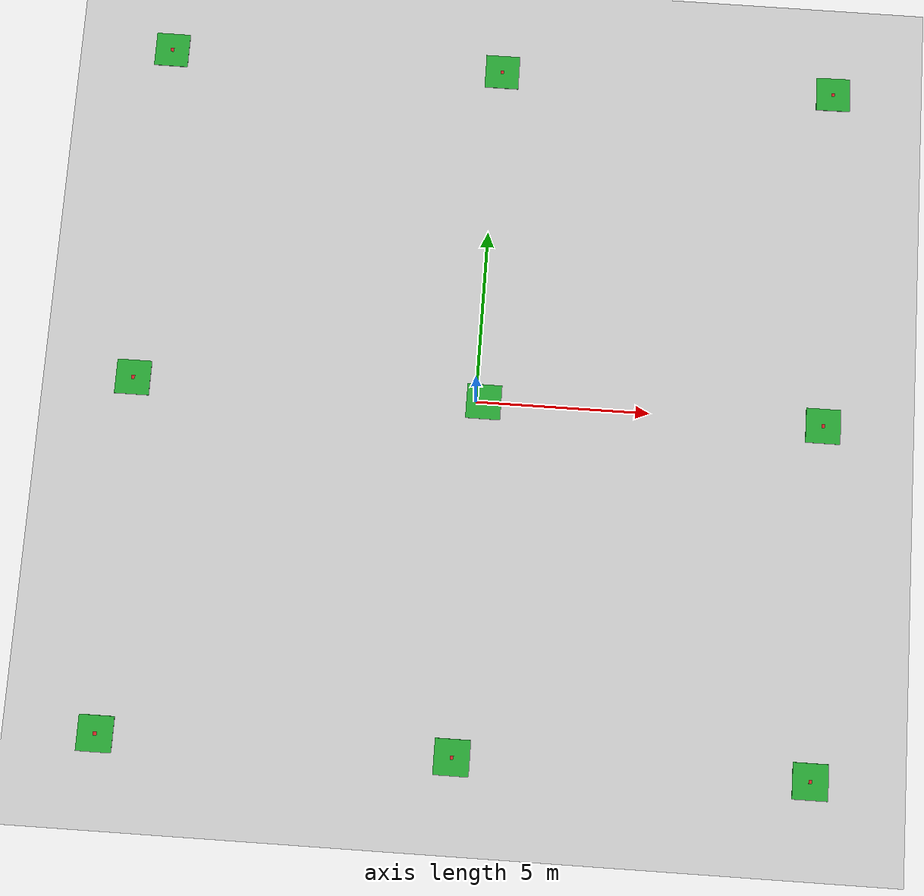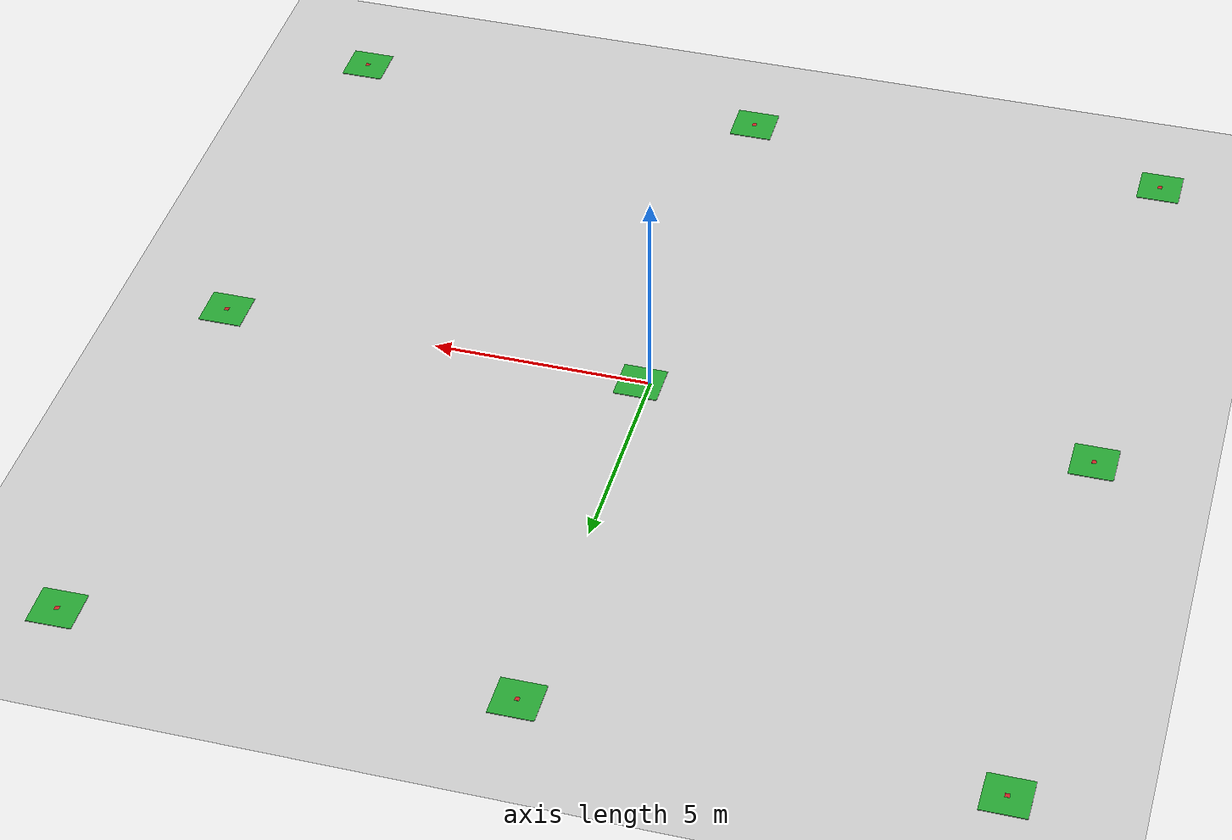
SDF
<sdf version="1.7">
 <world name="default">
  <physics type="ode">
   <ode>
    <solver>
     <type>quick</type>
     <iters>100</iters>
     <sor>1</sor>
     <use_dynamic_moi_rescaling>0</use_dynamic_moi_rescaling>
    </solver>
    <constraints>
     <cfm>0</cfm>
     <erp>0.9</erp>
     <contact_max_correcting_vel>0.1</contact_max_correcting_vel>
     <contact_surface_layer>0</contact_surface_layer>
    </constraints>
   </ode>
   <real_time_update_rate>-1</real_time_update_rate>
   <max_step_size>0.001</max_step_size>
   <real_time_factor>1</real_time_factor>
  </physics>
  <light name="sun" type="directional">
   <pose>0 0 10 0 -0 0</pose>
   <diffuse>0.8 0.8 0.8 1</diffuse>
   <specular>0.2 0.2 0.2 1</specular>
   <attenuation>
    <range>1000</range>
    <constant>0.9</constant>
    <linear>0.01</linear>
    <quadratic>0.001</quadratic>
   </attenuation>
   <direction>-0.5 0.1 -0.9</direction>
   <spot><inner_angle>0</inner_angle><outer_angle>0</outer_angle><falloff>0</falloff></spot>
  </light>
  <model name="ground_plane">
   <static>1</static>
   <link name="link">
    <collision name="collision">
     <geometry><plane><normal>0 0 1</normal><size>100 100</size></plane></geometry>
     <surface>
      <contact><collide_bitmask>65535</collide_bitmask></contact>
      <friction><ode><mu>100</mu><mu2>50</mu2></ode></friction>
     </surface>
    </collision>
    <visual name="visual">
     <cast_shadows>0</cast_shadows>
     <geometry><plane><normal>0 0 1</normal><size>100 100</size></plane></geometry>
     <material>
      <script><uri>file://media/materials/scripts/gazebo.material</uri><name>Gazebo/Grey</name></script>
     </material>
    </visual>
   </link>
  </model>
  <model name="irlock_beacon_01">
   <pose>0.20927 0.017657 0.008499 -0 -0.002998 -0.002981</pose>
   <link name="link">
    <inertial>
     <mass>3</mass>
     <inertia><ixx>0.019</ixx><ixy>0</ixy><ixz>0</ixz><iyy>0.01</iyy><iyz>0</iyz><izz>0.01</izz></inertia>
    </inertial>
    <collision name="collision">
     <geometry><box><size>1 1 0.02</size></box></geometry>
     <surface>
      <friction><ode><mu>1</mu><mu2>1</mu2><fdir1>1 0 0</fdir1></ode></friction>
      <contact><ode><kp>1e+12</kp><kd>1</kd><max_vel>10</max_vel><min_depth>0.003</min_depth></ode></contact>
     </surface>
    </collision>
    <visual name="visual2">
     <geometry><box><size>1 1 0.018</size></box></geometry>
     <material><script><name>Gazebo/Green</name><uri>__default__</uri></script></material>
    </visual>
    <visual name="visual">
     <geometry><box><size>0.1 0.1 0.02</size></box></geometry>
     <material><script><name>Gazebo/Red</name><uri>__default__</uri></script></material>
    </visual>
   </link>
  </model>
  <gravity>0 0 -9.8</gravity>
  <magnetic_field>6e-06 2.3e-05 -4.2e-05</magnetic_field>
  <atmosphere type="adiabatic"/>
  <scene><ambient>0.4 0.4 0.4 1</ambient><background>0.7 0.7 0.7 1</background><shadows>1</shadows></scene>
  <spherical_coordinates>
   <surface_model>EARTH_WGS84</surface_model>
   <latitude_deg>0</latitude_deg>
   <longitude_deg>0</longitude_deg>
   <elevation>0</elevation>
   <heading_deg>0</heading_deg>
  </spherical_coordinates>
  <model name="irlock_beacon_01_clone">
   <pose>10.0172 -0.019004 0.007456 0 0.000912 0</pose>
   <link name="link">
    <inertial>
     <mass>3</mass>
     <inertia><ixx>0.019</ixx><ixy>0</ixy><ixz>0</ixz><iyy>0.01</iyy><iyz>0</iyz><izz>0.01</izz></inertia>
    </inertial>
    <collision name="collision">
     <geometry><box><size>1 1 0.02</size></box></geometry>
     <surface>
      <friction><ode><mu>1</mu><mu2>1</mu2><fdir1>1 0 0</fdir1></ode></friction>
      <contact><ode><kp>1e+12</kp><kd>1</kd><max_vel>10</max_vel><min_depth>0.003</min_depth></ode></contact>
     </surface>
    </collision>
    <visual name="visual2">
     <geometry><box><size>1 1 0.018</size></box></geometry>
     <material><script><name>Gazebo/Green</name><uri>__default__</uri></script></material>
    </visual>
    <visual name="visual">
     <geometry><box><size>0.1 0.1 0.02</size></box></geometry>
     <material><script><name>Gazebo/Red</name><uri>__default__</uri></script></material>
    </visual>
   </link>
  </model>
  <model name="irlock_beacon_01_clone_clone">
   <pose>9.99538 9.96211 0.008495 -0 0.002991 0.01511</pose>
   <link name="link">
    <inertial>
     <mass>3</mass>
     <inertia><ixx>0.019</ixx><ixy>0</ixy><ixz>0</ixz><iyy>0.01</iyy><iyz>0</iyz><izz>0.01</izz></inertia>
    </inertial>
    <collision name="collision">
     <geometry><box><size>1 1 0.02</size></box></geometry>
     <surface>
      <friction><ode><mu>1</mu><mu2>1</mu2><fdir1>1 0 0</fdir1></ode></friction>
      <contact><ode><kp>1e+12</kp><kd>1</kd><max_vel>10</max_vel><min_depth>0.003</min_depth></ode></contact>
     </surface>
    </collision>
    <visual name="visual2">
     <geometry><box><size>1 1 0.018</size></box></geometry>
     <material><script><name>Gazebo/Green</name><uri>__default__</uri></script></material>
    </visual>
    <visual name="visual">
     <geometry><box><size>0.1 0.1 0.02</size></box></geometry>
     <material><script><name>Gazebo/Red</name><uri>__default__</uri></script></material>
    </visual>
   </link>
  </model>
  <model name="irlock_beacon_01_clone_clone_0">
   <pose>0.086956 9.98542 0.008499 -0 0.002998 0.002845</pose>
   <link name="link">
    <inertial>
     <mass>3</mass>
     <inertia><ixx>0.019</ixx><ixy>0</ixy><ixz>0</ixz><iyy>0.01</iyy><iyz>0</iyz><izz>0.01</izz></inertia>
    </inertial>
    <collision name="collision">
     <geometry><box><size>1 1 0.02</size></box></geometry>
     <surface>
      <friction><ode><mu>1</mu><mu2>1</mu2><fdir1>1 0 0</fdir1></ode></friction>
      <contact><ode><kp>1e+12</kp><kd>1</kd><max_vel>10</max_vel><min_depth>0.003</min_depth></ode></contact>
     </surface>
    </collision>
    <visual name="visual2">
     <geometry><box><size>1 1 0.018</size></box></geometry>
     <material><script><name>Gazebo/Green</name><uri>__default__</uri></script></material>
    </visual>
    <visual name="visual">
     <geometry><box><size>0.1 0.1 0.02</size></box></geometry>
     <material><script><name>Gazebo/Red</name><uri>__default__</uri></script></material>
    </visual>
   </link>
  </model>
  <model name="irlock_beacon_01_clone_clone_1">
   <pose>9.97725 -9.96773 0.007456 0 0.000912 0</pose>
   <link name="link">
    <inertial>
     <mass>3</mass>
     <inertia><ixx>0.019</ixx><ixy>0</ixy><ixz>0</ixz><iyy>0.01</iyy><iyz>0</iyz><izz>0.01</izz></inertia>
    </inertial>
    <collision name="collision">
     <geometry><box><size>1 1 0.02</size></box></geometry>
     <surface>
      <friction><ode><mu>1</mu><mu2>1</mu2><fdir1>1 0 0</fdir1></ode></friction>
      <contact><ode><kp>1e+12</kp><kd>1</kd><max_vel>10</max_vel><min_depth>0.003</min_depth></ode></contact>
     </surface>
    </collision>
    <visual name="visual2">
     <geometry><box><size>1 1 0.018</size></box></geometry>
     <material><script><name>Gazebo/Green</name><uri>__default__</uri></script></material>
    </visual>
    <visual name="visual">
     <geometry><box><size>0.1 0.1 0.02</size></box></geometry>
     <material><script><name>Gazebo/Red</name><uri>__default__</uri></script></material>
    </visual>
   </link>
  </model>
  <model name="irlock_beacon_01_clone_0">
   <pose>-9.84563 10.0009 0.008496 0 0.002993 -0.00214</pose>
   <link name="link">
    <inertial>
     <mass>3</mass>
     <inertia><ixx>0.019</ixx><ixy>0</ixy><ixz>0</ixz><iyy>0.01</iyy><iyz>0</iyz><izz>0.01</izz></inertia>
    </inertial>
    <collision name="collision">
     <geometry><box><size>1 1 0.02</size></box></geometry>
     <surface>
      <friction><ode><mu>1</mu><mu2>1</mu2><fdir1>1 0 0</fdir1></ode></friction>
      <contact><ode><kp>1e+12</kp><kd>1</kd><max_vel>10</max_vel><min_depth>0.003</min_depth></ode></contact>
     </surface>
    </collision>
    <visual name="visual2">
     <geometry><box><size>1 1 0.018</size></box></geometry>
     <material><script><name>Gazebo/Green</name><uri>__default__</uri></script></material>
    </visual>
    <visual name="visual">
     <geometry><box><size>0.1 0.1 0.02</size></box></geometry>
     <material><script><name>Gazebo/Red</name><uri>__default__</uri></script></material>
    </visual>
   </link>
  </model>
  <model name="irlock_beacon_01_clone_1">
   <pose>-9.97256 -10.0375 0.008498 0 0.002996 -0.001033</pose>
   <link name="link">
    <inertial>
     <mass>3</mass>
     <inertia><ixx>0.019</ixx><ixy>0</ixy><ixz>0</ixz><iyy>0.01</iyy><iyz>0</iyz><izz>0.01</izz></inertia>
    </inertial>
    <collision name="collision">
     <geometry><box><size>1 1 0.02</size></box></geometry>
     <surface>
      <friction><ode><mu>1</mu><mu2>1</mu2><fdir1>1 0 0</fdir1></ode></friction>
      <contact><ode><kp>1e+12</kp><kd>1</kd><max_vel>10</max_vel><min_depth>0.003</min_depth></ode></contact>
     </surface>
    </collision>
    <visual name="visual2">
     <geometry><box><size>1 1 0.018</size></box></geometry>
     <material><script><name>Gazebo/Green</name><uri>__default__</uri></script></material>
    </visual>
    <visual name="visual">
     <geometry><box><size>0.1 0.1 0.02</size></box></geometry>
     <material><script><name>Gazebo/Red</name><uri>__default__</uri></script></material>
    </visual>
   </link>
  </model>
  <model name="irlock_beacon_01_clone_2">
   <pose>0.001114 -9.99977 0.008493 0 0.002986 -0.001256</pose>
   <link name="link">
    <inertial>
     <mass>3</mass>
     <inertia><ixx>0.019</ixx><ixy>0</ixy><ixz>0</ixz><iyy>0.01</iyy><iyz>0</iyz><izz>0.01</izz></inertia>
    </inertial>
    <collision name="collision">
     <geometry><box><size>1 1 0.02</size></box></geometry>
     <surface>
      <friction><ode><mu>1</mu><mu2>1</mu2><fdir1>1 0 0</fdir1></ode></friction>
      <contact><ode><kp>1e+12</kp><kd>1</kd><max_vel>10</max_vel><min_depth>0.003</min_depth></ode></contact>
     </surface>
    </collision>
    <visual name="visual2">
     <geometry><box><size>1 1 0.018</size></box></geometry>
     <material><script><name>Gazebo/Green</name><uri>__default__</uri></script></material>
    </visual>
    <visual name="visual">
     <geometry><box><size>0.1 0.1 0.02</size></box></geometry>
     <material><script><name>Gazebo/Red</name><uri>__default__</uri></script></material>
    </visual>
   </link>
  </model>
  <model name="irlock_beacon_01_clone_3">
   <pose>-9.97259 0.037094 0.008493 -0 0.002986 -0.001185</pose>
   <link name="link">
    <inertial>
     <mass>3</mass>
     <inertia><ixx>0.019</ixx><ixy>0</ixy><ixz>0</ixz><iyy>0.01</iyy><iyz>0</iyz><izz>0.01</izz></inertia>
    </inertial>
    <collision name="collision">
     <geometry><box><size>1 1 0.02</size></box></geometry>
     <surface>
      <friction><ode><mu>1</mu><mu2>1</mu2><fdir1>1 0 0</fdir1></ode></friction>
      <contact><ode><kp>1e+12</kp><kd>1</kd><max_vel>10</max_vel><min_depth>0.003</min_depth></ode></contact>
     </surface>
    </collision>
    <visual name="visual2">
     <geometry><box><size>1 1 0.018</size></box></geometry>
     <material><script><name>Gazebo/Green</name><uri>__default__</uri></script></material>
    </visual>
    <visual name="visual">
     <geometry><box><size>0.1 0.1 0.02</size></box></geometry>
     <material><script><name>Gazebo/Red</name><uri>__default__</uri></script></material>
    </visual>
   </link>
  </model>
 </world>
</sdf>
